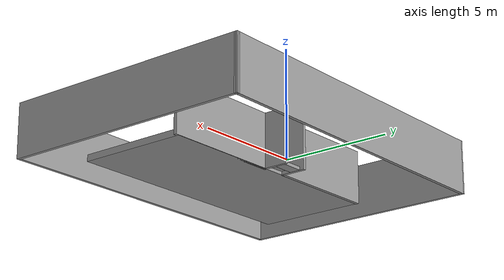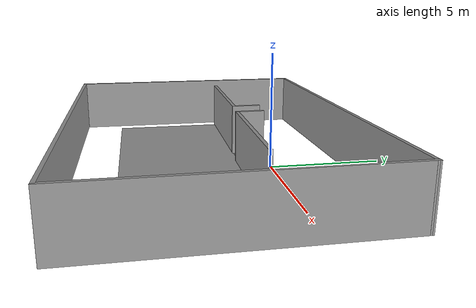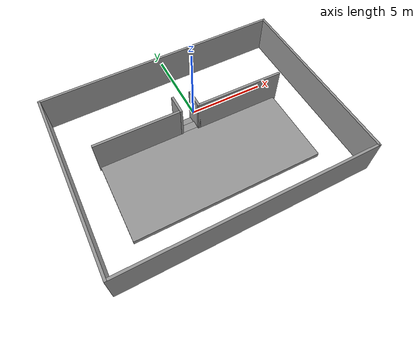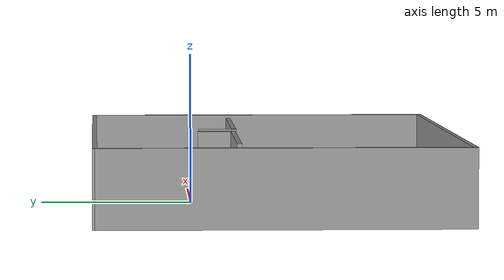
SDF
<?xml version='1.0'?>
<sdf version='1.7'>
  <model name='stairs_trial_1'>
    <pose>-0.703211 -2.58161 0 0 -0 0</pose>
    <link name='Stairs_1'>
      <visual name='Stairs_1_Visual_0'>
        <pose>-0.154918 1.9343 0.075 0 -0 0</pose>
        <geometry>
          <box>
            <size>1 0.5 0.15</size>
          </box>
        </geometry>
        <material>
          <script>
            <uri>file://media/materials/scripts/gazebo.material</uri>
            <name>Gazebo/Grey</name>
          </script>
          <ambient>1 1 1 1</ambient>
        </material>
        <meta>
          <layer>0</layer>
        </meta>
      </visual>
      <collision name='Stairs_1_Collision_0'>
        <geometry>
          <box>
            <size>1 0.5 0.15</size>
          </box>
        </geometry>
        <pose>-0.154918 1.9343 0.075 0 -0 0</pose>
      </collision>
      <visual name='Stairs_1_Visual_1'>
        <pose>-0.154918 1.4343 0.225 0 -0 0</pose>
        <geometry>
          <box>
            <size>1 0.5 0.15</size>
          </box>
        </geometry>
        <material>
          <script>
            <uri>file://media/materials/scripts/gazebo.material</uri>
            <name>Gazebo/Grey</name>
          </script>
          <ambient>1 1 1 1</ambient>
        </material>
        <meta>
          <layer>0</layer>
        </meta>
      </visual>
      <collision name='Stairs_1_Collision_1'>
        <geometry>
          <box>
            <size>1 0.5 0.15</size>
          </box>
        </geometry>
        <pose>-0.154918 1.4343 0.225 0 -0 0</pose>
      </collision>
    </link>
    <link name='Wall_1'>
      <collision name='Wall_1_Collision'>
        <geometry>
          <box>
            <size>12 5.15 0.3</size>
          </box>
        </geometry>
        <pose>0 0 0.15 0 -0 0</pose>
      </collision>
      <visual name='Wall_1_Visual'>
        <pose>0 0 0.15 0 -0 0</pose>
        <geometry>
          <box>
            <size>12 5.15 0.3</size>
          </box>
        </geometry>
        <material>
          <script>
            <uri>file://media/materials/scripts/gazebo.material</uri>
            <name>Gazebo/Grey</name>
          </script>
          <ambient>1 1 1 1</ambient>
        </material>
        <meta>
          <layer>0</layer>
        </meta>
      </visual>
      <pose>-0.102917 -1.39072 0 0 -0 0</pose>
    </link>
    <link name='Wall_11'>
      <collision name='Wall_11_Collision'>
        <geometry>
          <box>
            <size>5.5 0.15 2.5</size>
          </box>
        </geometry>
        <pose>0 0 1.25 0 -0 0</pose>
      </collision>
      <visual name='Wall_11_Visual'>
        <pose>0 0 1.25 0 -0 0</pose>
        <geometry>
          <box>
            <size>5.5 0.15 2.5</size>
          </box>
        </geometry>
        <material>
          <script>
            <uri>file://media/materials/scripts/gazebo.material</uri>
            <name>Gazebo/Grey</name>
          </script>
          <ambient>1 1 1 1</ambient>
        </material>
        <meta>
          <layer>0</layer>
        </meta>
      </visual>
      <pose>-3.41904 1.208 0 0 -0 0</pose>
    </link>
    <link name='Wall_12'>
      <collision name='Wall_12_Collision'>
        <geometry>
          <box>
            <size>1.25 0.15 2.5</size>
          </box>
        </geometry>
        <pose>0 0 1.25 0 -0 0</pose>
      </collision>
      <visual name='Wall_12_Visual'>
        <pose>0 0 1.25 0 -0 0</pose>
        <geometry>
          <box>
            <size>1.25 0.15 2.5</size>
          </box>
        </geometry>
        <material>
          <script>
            <uri>file://media/materials/scripts/gazebo.material</uri>
            <name>Gazebo/Grey</name>
          </script>
          <ambient>1 1 1 1</ambient>
        </material>
        <meta>
          <layer>0</layer>
        </meta>
      </visual>
      <pose>-0.744037 1.758 0 0 -0 1.5708</pose>
    </link>
    <link name='Wall_14'>
      <collision name='Wall_14_Collision'>
        <geometry>
          <box>
            <size>1.25 0.15 2.5</size>
          </box>
        </geometry>
        <pose>0 0 1.25 0 -0 0</pose>
      </collision>
      <visual name='Wall_14_Visual'>
        <pose>0 0 1.25 0 -0 0</pose>
        <geometry>
          <box>
            <size>1.25 0.15 2.5</size>
          </box>
        </geometry>
        <material>
          <script>
            <uri>file://media/materials/scripts/gazebo.material</uri>
            <name>Gazebo/Grey</name>
          </script>
          <ambient>1 1 1 1</ambient>
        </material>
        <meta>
          <layer>0</layer>
        </meta>
      </visual>
      <pose>0.385963 1.688 0 0 -0 -1.5708</pose>
    </link>
    <link name='Wall_15'>
      <collision name='Wall_15_Collision'>
        <geometry>
          <box>
            <size>5.75 0.15 2.5</size>
          </box>
        </geometry>
        <pose>0 0 1.25 0 -0 0</pose>
      </collision>
      <visual name='Wall_15_Visual'>
        <pose>0 0 1.25 0 -0 0</pose>
        <geometry>
          <box>
            <size>5.75 0.15 2.5</size>
          </box>
        </geometry>
        <material>
          <script>
            <uri>file://media/materials/scripts/gazebo.material</uri>
            <name>Gazebo/Grey</name>
          </script>
          <ambient>1 1 1 1</ambient>
        </material>
        <meta>
          <layer>0</layer>
        </meta>
      </visual>
      <pose>3.18596 1.138 0 0 -0 0</pose>
    </link>
    <link name='Wall_6'>
      <collision name='Wall_6_Collision'>
        <geometry>
          <box>
            <size>11.75 0.15 2.5</size>
          </box>
        </geometry>
        <pose>0 0 1.25 0 -0 0</pose>
      </collision>
      <visual name='Wall_6_Visual'>
        <pose>0 0 1.25 0 -0 0</pose>
        <geometry>
          <box>
            <size>11.75 0.15 2.5</size>
          </box>
        </geometry>
        <material>
          <script>
            <uri>file://media/materials/scripts/gazebo.material</uri>
            <name>Gazebo/Grey</name>
          </script>
          <ambient>1 1 1 1</ambient>
        </material>
        <meta>
          <layer>0</layer>
        </meta>
      </visual>
      <pose>-7.925 -0.125586 0 0 -0 -1.5708</pose>
    </link>
    <link name='Wall_7'>
      <collision name='Wall_7_Collision'>
        <geometry>
          <box>
            <size>16 0.15 2.5</size>
          </box>
        </geometry>
        <pose>0 0 1.25 0 -0 0</pose>
      </collision>
      <visual name='Wall_7_Visual'>
        <pose>0 0 1.25 0 -0 0</pose>
        <geometry>
          <box>
            <size>16 0.15 2.5</size>
          </box>
        </geometry>
        <material>
          <script>
            <uri>file://media/materials/scripts/gazebo.material</uri>
            <name>Gazebo/Grey</name>
          </script>
          <ambient>1 1 1 1</ambient>
        </material>
        <meta>
          <layer>0</layer>
        </meta>
      </visual>
      <pose>0 -5.92559 0 0 -0 0</pose>
    </link>
    <link name='Wall_8'>
      <collision name='Wall_8_Collision'>
        <geometry>
          <box>
            <size>12 0.15 2.5</size>
          </box>
        </geometry>
        <pose>0 0 1.25 0 -0 0</pose>
      </collision>
      <visual name='Wall_8_Visual'>
        <pose>0 0 1.25 0 -0 0</pose>
        <geometry>
          <box>
            <size>12 0.15 2.5</size>
          </box>
        </geometry>
        <material>
          <script>
            <uri>file://media/materials/scripts/gazebo.material</uri>
            <name>Gazebo/Grey</name>
          </script>
          <ambient>1 1 1 1</ambient>
        </material>
        <meta>
          <layer>0</layer>
        </meta>
      </visual>
      <pose>7.925 -0.000586 0 0 -0 1.5708</pose>
    </link>
    <link name='Wall_9'>
      <collision name='Wall_9_Collision'>
        <geometry>
          <box>
            <size>16.002 0.15 2.5</size>
          </box>
        </geometry>
        <pose>0 0 1.25 0 -0 0</pose>
      </collision>
      <visual name='Wall_9_Visual'>
        <pose>0 0 1.25 0 -0 0</pose>
        <geometry>
          <box>
            <size>16.002 0.15 2.5</size>
          </box>
        </geometry>
        <material>
          <script>
            <uri>file://media/materials/scripts/gazebo.material</uri>
            <name>Gazebo/Grey</name>
          </script>
          <ambient>1 1 1 1</ambient>
        </material>
        <meta>
          <layer>0</layer>
        </meta>
      </visual>
      <pose>0 5.79941 0 0 -0 -3.12582</pose>
    </link>
    <static>1</static>
  </model>
</sdf>
